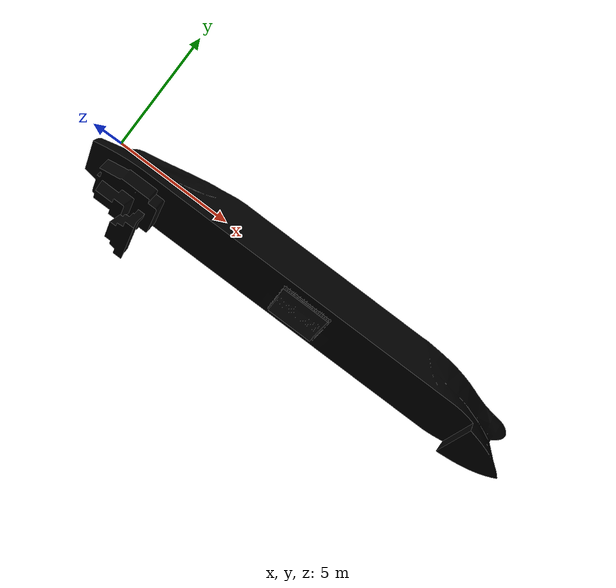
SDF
<?xml version='1.0'?>
<sdf version='1.7'>
  <model name='transportship_180m_5'>
    <link name='link'>
      <pose>-0 0.149998 0 1 0.01 0</pose>
      <self_collide>0</self_collide>
      <inertial>
        <pose>0 0 0 0 -0 0</pose>
        <inertia>
          <ixx>1</ixx>
          <ixy>0</ixy>
          <ixz>0</ixz>
          <iyy>1</iyy>
          <iyz>0</iyz>
          <izz>1</izz>
        </inertia>
        <mass>1</mass>
      </inertial>
      <enable_wind>0</enable_wind>
      <kinematic>0</kinematic>
      <gravity>1</gravity>
      <visual name='visual'>
        <geometry>
          <mesh>
            <scale>0.1 0.1 0.1</scale>
            <uri>model://transport_ship/meshes/model.dae</uri>
          </mesh>
        </geometry>
        <material>
          <shader type='pixel'>
            <normal_map>__default__</normal_map>
          </shader>
          <script>
            <name>ModelPreview_1::link::visual_MATERIAL_</name>
          </script>
          <ambient>0 0 0 1</ambient>
          <diffuse>0 0 0 1</diffuse>
          <specular>0 0 0 1</specular>
          <emissive>0 0 0 1</emissive>
        </material>
        <pose>0 0 0 0 -0 0</pose>
        <transparency>0</transparency>
        <cast_shadows>1</cast_shadows>
      </visual>
      <collision name='collision'>
        <laser_retro>0</laser_retro>
        <max_contacts>10</max_contacts>
        <pose>0 0 0 0 -0 0</pose>
        <geometry>
          <mesh>
            <uri>/home/evren/development/catkin_ws/src/iq_sim/models/transport_ship/meshes/model.dae</uri>
            <scale>0.1 0.1 0.1</scale>
          </mesh>
        </geometry>
        <surface>
          <friction>
            <ode>
              <mu>1</mu>
              <mu2>1</mu2>
              <fdir1>0 0 0</fdir1>
              <slip1>0</slip1>
              <slip2>0</slip2>
            </ode>
            <torsional>
              <coefficient>1</coefficient>
              <patch_radius>0</patch_radius>
              <surface_radius>0</surface_radius>
              <use_patch_radius>1</use_patch_radius>
              <ode>
                <slip>0</slip>
              </ode>
            </torsional>
          </friction>
          <bounce>
            <restitution_coefficient>0</restitution_coefficient>
            <threshold>1e+06</threshold>
          </bounce>
          <contact>
            <collide_without_contact>0</collide_without_contact>
            <collide_without_contact_bitmask>1</collide_without_contact_bitmask>
            <collide_bitmask>1</collide_bitmask>
            <ode>
              <soft_cfm>0</soft_cfm>
              <soft_erp>0.2</soft_erp>
              <kp>1e+13</kp>
              <kd>1</kd>
              <max_vel>0.01</max_vel>
              <min_depth>0</min_depth>
            </ode>
            <bullet>
              <split_impulse>1</split_impulse>
              <split_impulse_penetration_threshold>-0.01</split_impulse_penetration_threshold>
              <soft_cfm>0</soft_cfm>
              <soft_erp>0.2</soft_erp>
              <kp>1e+13</kp>
              <kd>1</kd>
            </bullet>
          </contact>
        </surface>
      </collision>
    </link>
    <link name='body'>
      <inertial>
        <mass>1.1e+06</mass>
        <inertia>
          <ixx>0</ixx>
          <ixy>0</ixy>
          <ixz>0</ixz>
          <iyy>0</iyy>
          <iyz>0</iyz>
          <izz>0</izz>
        </inertia>
        <pose>0 0 0 0 -0 0</pose>
      </inertial>
      <self_collide>0</self_collide>
      <enable_wind>0</enable_wind>
      <kinematic>0</kinematic>
      <pose>0 0 0 0 -0 0</pose>
      <gravity>1</gravity>
    </link>
    <static>0</static>
    <allow_auto_disable>0</allow_auto_disable>
    <plugin name='BuoyancyPlugin' filename='libBuoyancyPlugin.so'>
      <fluid_density>1000</fluid_density>
      <link name='body'>
        <center_of_volume>1 2 3</center_of_volume>
        <volume>50</volume>
      </link>
    </plugin>
  </model>
</sdf>
